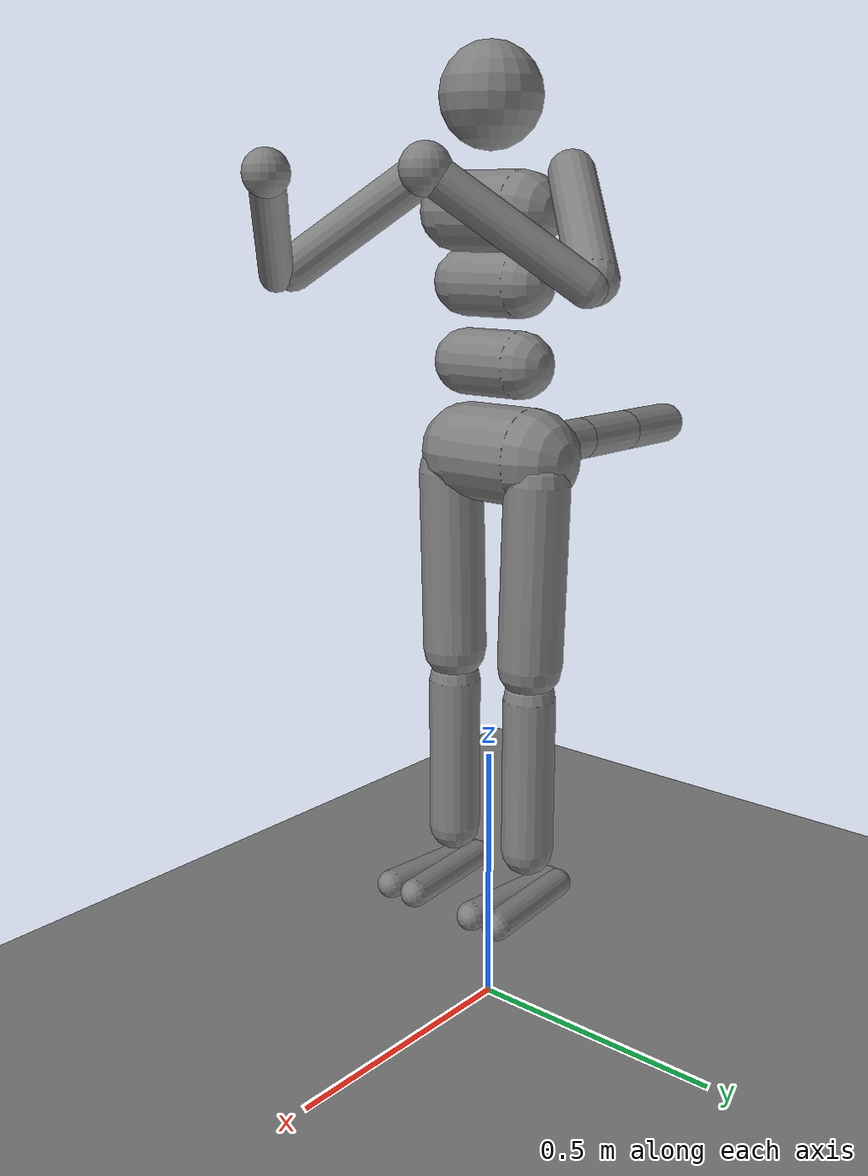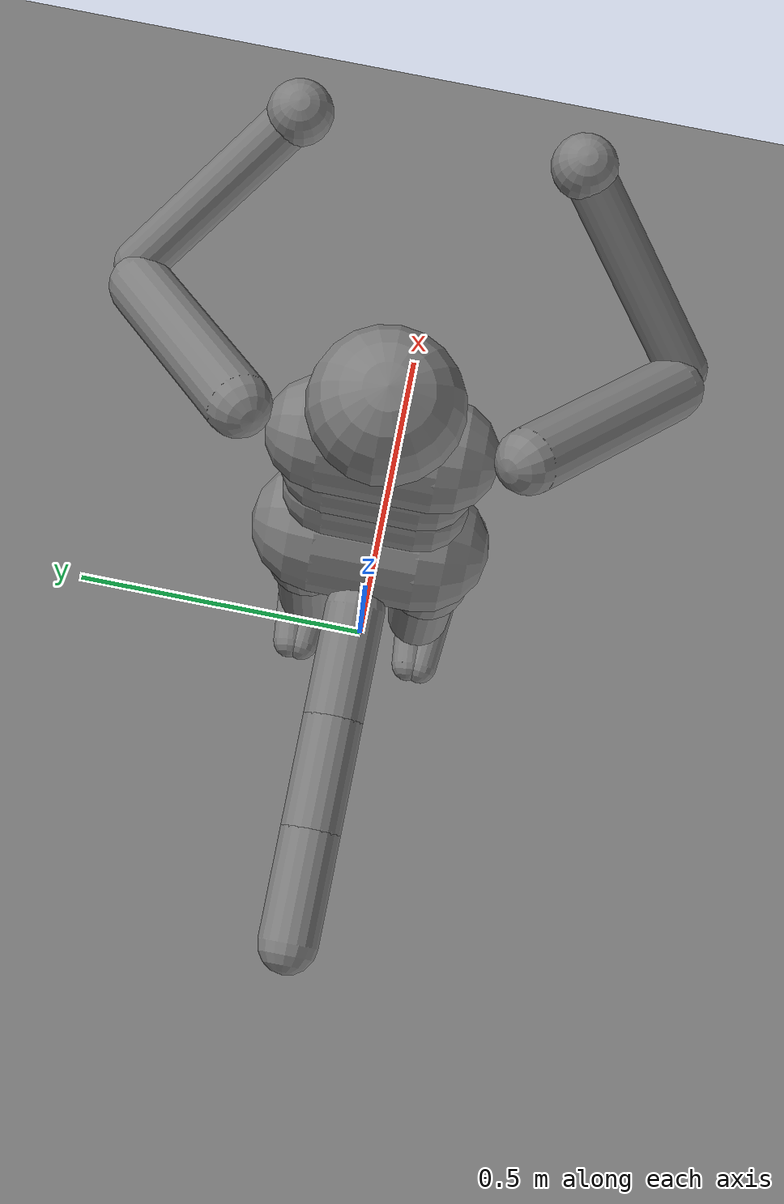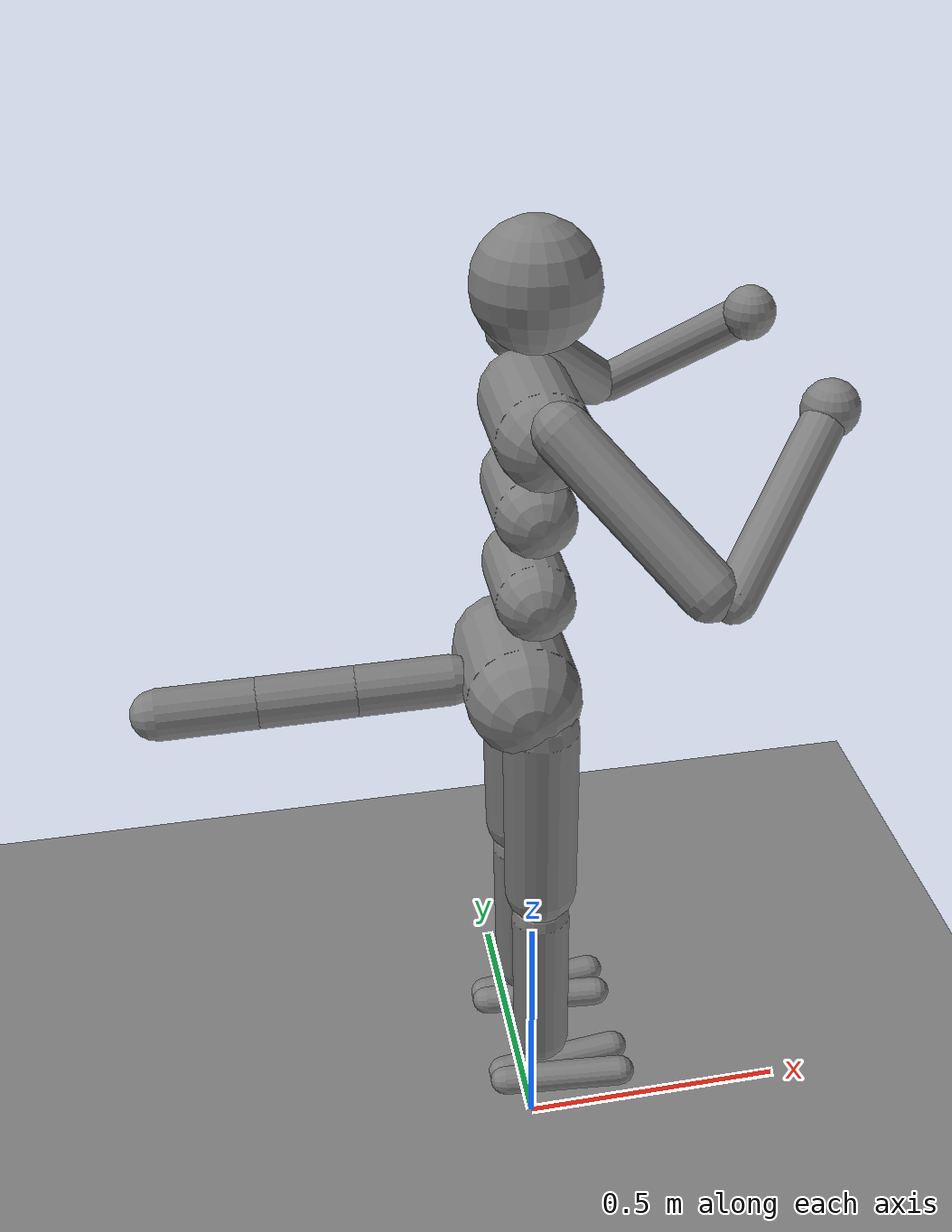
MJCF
<mujoco model="humanoid_horizontal">

  <statistic extent="2" center="0 0 1"/>

  <option timestep="0.00555"/>

  <default>
    <motor ctrlrange="-1 1" ctrllimited="true"/>
    <default class="body">
      <geom  type="capsule" condim="1" friction="1.0 0.05 0.05" solimp=".9 .99 .003" solref=".015 1"/>
      <joint type="hinge" damping="0.1" stiffness="5" armature=".007" limited="true" solimplimit="0 .99 .01"/>
      <default class="small_joint">
        <joint damping="1.0" stiffness="2" armature=".006"/>
      </default>
      <default class="big_joint">
        <joint damping="5" stiffness="10" armature=".01"/>
      </default>
      <default class="bigger_stiff_joint">
        <joint damping="5" stiffness="20" armature=".01"/>
      </default>
      <default class="big_stiff_joint">
        <joint damping="5" stiffness="20" armature=".02"/>
      </default>
      <site size=".04" group="3"/>
      <default class="force-torque">
        <site type="box" size=".01 .01 .02" rgba="1 0 0 1" />
      </default>
      <default class="touch">
        <site type="capsule" rgba="0 0 1 .3"/>
      </default>
    </default>
  </default>

  <worldbody>
    <geom name="floor" type="plane" conaffinity="1" size="100 100 .2"/>
    <body name="torso" pos="0 0 1.5" childclass="body">
      <light name="top" pos="0 0 2" mode="trackcom"/>
      <camera name="back" pos="-3 0 1" xyaxes="0 -1 0 1 0 2" mode="trackcom"/>
      <camera name="side" pos="0 -3 1" xyaxes="1 0 0 0 1 2" mode="trackcom"/>
      <freejoint name="root"/>
      <site name="root" class="force-torque"/>
      <geom name="torso" fromto="0 -.07 0 0 .07 0" size=".07"/>
      <geom name="upper_waist" fromto="-.01 -.06 -.12 -.01 .06 -.12" size=".06"/>
      <site name="torso" class="touch" type="box" pos="0 0 -.05" size=".075 .14 .13"/>
      <body name="head" pos="0 0 .19">
        <geom name="head" type="sphere" size=".09"/>
        <site name="head" class="touch" type="sphere" size=".091"/>
        <camera name="egocentric" pos=".09 0 0" xyaxes="0 -1 0 .1 0 1" fovy="80"/>
      </body>
      <body name="lower_waist" pos="-.01 0 -.260" quat="1.000 0 -.002 0">
        <geom name="lower_waist" fromto="0 -.06 0 0 .06 0" size=".06"/>
        <site name="lower_waist" class="touch" size=".061 .06" zaxis="0 1 0"/>
        <joint name="abdomen_z" pos="0 0 .065" axis="0 0 1" range="-45 45" class="big_stiff_joint"/>
        <joint name="abdomen_y" pos="0 0 .065" axis="0 1 0" range="-75 30" class="bigger_stiff_joint"/>
        <body name="pelvis" pos="0 0 -.165" quat="1.000 0 -.002 0">
          <joint name="abdomen_x" pos="0 0 .1" axis="1 0 0" range="-35 35" class="big_joint"/>
          <geom name="butt" fromto="-.02 -.07 0 -.02 .07 0" size=".09"/>
          <site name="butt" class="touch" size=".091 .07" pos="-.02 0 0" zaxis="0 1 0"/>
          <body name="tail" pos="-0.12 0 0">
            <joint name="tail_1_y" pos="0.0 0 0" axis="0 1 0" range="-60 60" class="small_joint"/>
            <joint name="tail_1_z" pos="0.0 0 0" axis="0 0 1" range="-60 60" class="small_joint"/>
            <geom name="tail_1" fromto="-.15 0 0 .0  .0 0" size=".04"/>
            <site name="tail_1" class="touch" pos=".035 -.03 0" size=".03 .11" zaxis="21 -2 0"/>
            <body name="tail_2" pos="-0.15 0 0">
              <joint name="tail_2_y" pos="0.0 0 0" axis="0 1 0" range="-60 60" class="small_joint"/>
              <joint name="tail_2_z" pos="0.0 0 0" axis="0 0 1" range="-60 60" class="small_joint"/>
              <geom name="tail_2" fromto="-.15 0 0 .0  .0 0" size=".04"/>
              <site name="tail_2" class="touch" pos=".035 -.03 0" size=".03 .11" zaxis="21 -2 0"/>
              <body name="tail_3" pos="-0.15 0 0">
                <joint name="tail_3_y" pos="0.0 0 0" axis="0 1 0" range="-60 60" class="small_joint"/>
                <joint name="tail_3_z" pos="0.0 0 0" axis="0 0 1" range="-60 60" class="small_joint"/>
                <geom name="tail_3" fromto="-.15 0 0 .0  .0 0" size=".04"/>
                <site name="tail_3" class="touch" pos=".035 -.03 0" size=".03 .11" zaxis="21 -2 0"/>
              </body>
            </body>
          </body>

          <body name="right_thigh" pos="0 -.1 -.04">
            <site name="right_hip" class="force-torque"/>
            <joint name="right_hip_x" axis="1 0 0" range="-45 15" class="big_joint"/>
            <joint name="right_hip_z" axis="0 0 1" range="-60 35" class="big_joint"/>
            <joint name="right_hip_y" axis="0 1 0" range="-120 45" class="bigger_stiff_joint"/>
            <geom name="right_thigh" fromto="0 0 0 0 .01 -.34" size=".06"/>
            <site name="right_thigh" class="touch" pos="0 .005 -.17" size=".061 .17" zaxis="0 -1 34"/>
            <body name="right_shin" pos="0 .01 -.403">
              <site name="right_knee" class="force-torque" pos="0 0 .02"/>
              <joint name="right_knee" pos="0 0 .02" axis="0 -1 0" range="-160 2"/>
              <geom name="right_shin" fromto="0 0 0 0 0 -.3"  size=".049"/>
              <site name="right_shin" class="touch" pos="0 0 -.15" size=".05 .15"/>
              <body name="right_foot" pos="0 0 -.39">
                <site name="right_ankle" class="force-torque"/>
                <joint name="right_ankle_y" pos="0 0 .08" axis="0 1 0" range="-50 50" class="small_joint"/>
                <joint name="right_ankle_x" pos="0 0 .08" axis="1 0 .5" range="-50 50" class="small_joint"/>
                <geom name="right_right_foot" fromto="-.07 -.02 0 .14 -.04 0" size=".027"/>
                <geom name="left_right_foot" fromto="-.07 0 0 .14  .02 0" size=".027"/>
                <site name="right_right_foot" class="touch" pos=".035 -.03 0" size=".03 .11" zaxis="21 -2 0"/>
                <site name="left_right_foot" class="touch" pos=".035 .01 0" size=".03 .11" zaxis="21 2 0"/>
              </body>
            </body>
          </body>
          <body name="left_thigh" pos="0 .1 -.04">
            <site name="left_hip" class="force-torque"/>
            <joint name="left_hip_x" axis="-1 0 0" range="-45 15" class="big_joint"/>
            <joint name="left_hip_z" axis="0 0 -1" range="-60 35" class="big_joint"/>
            <joint name="left_hip_y" axis="0 1 0" range="-120 45" class="bigger_stiff_joint"/>
            <geom name="left_thigh" fromto="0 0 0 0 -.01 -.34" size=".06"/>
            <site name="left_thigh" class="touch" pos="0 -.005 -.17" size=".061 .17" zaxis="0 1 34"/>
            <body name="left_shin" pos="0 -.01 -.403">
              <site name="left_knee" class="force-torque" pos="0 0 .02"/>
              <joint name="left_knee" pos="0 0 .02" axis="0 -1 0" range="-160 2"/>
              <geom name="left_shin" fromto="0 0 0 0 0 -.3"  size=".049"/>
              <site name="left_shin" class="touch"  pos="0 0 -.15" size=".05 .15"/>
              <body name="left_foot" pos="0 0 -.39">
                <site name="left_ankle" class="force-torque"/>
                <joint name="left_ankle_y" pos="0 0 .08" axis="0 1 0" range="-50 50" class="small_joint"/>
                <joint name="left_ankle_x" pos="0 0 .08" axis="1 0 .5" range="-50 50" class="small_joint"/>
                <geom name="left_left_foot" fromto="-.07 .02 0 .14 .04 0" size=".027"/>
                <geom name="right_left_foot" fromto="-.07 0 0 .14  -.02 0" size=".027"/>
                <site name="right_left_foot" class="touch" pos=".035 -.01 0" size=".03 .11" zaxis="21 -2 0"/>
                <site name="left_left_foot" class="touch" pos=".035 .03 0" size=".03 .11" zaxis="21 2 0"/>
              </body>
            </body>
          </body>
        </body>
      </body>
      <body name="right_upper_arm" pos="0 -.17 .06">
        <joint name="right_shoulder1" axis="2 1 1"  range="-90 70" class="big_joint"/>
        <joint name="right_shoulder2" axis="0 -1 1" range="-90 70" class="big_joint"/>
        <geom name="right_upper_arm" fromto="0 0 0 .16 -.16 -.16" size=".04 .16"/>
        <site name="right_upper_arm" class="touch" pos=".08 -.08 -.08" size=".041 .14" zaxis="1 -1 -1"/>
        <body name="right_lower_arm" pos=".18 -.18 -.18">
          <joint name="right_elbow" axis="0 -1 1" range="-90 50" class="small_joint"/>
          <geom name="right_lower_arm" fromto=".01 .01 .01 .17 .17 .17" size=".031"/>
          <site name="right_lower_arm" class="touch" pos=".09 .09 .09" size=".032 .14" zaxis="1 1 1"/>
          <body name="right_hand" pos=".18 .18 .18">
            <geom name="right_hand" type="sphere" size=".04"/>
            <site name="right_hand" class="touch" type="sphere" size=".041"/>
          </body>
        </body>
      </body>
      <body name="left_upper_arm" pos="0 .17 .06">
        <joint name="left_shoulder1" axis="-2 1 -1" range="-90 70" class="big_joint"/>
        <joint name="left_shoulder2" axis="0 -1 -1" range="-90 70" class="big_joint"/>
        <geom name="left_upper_arm" fromto="0 0 0 .16 .16 -.16" size=".04 .16"/>
        <site name="left_upper_arm" class="touch" pos=".08 .08 -.08" size=".041 .14" zaxis="1 1 -1"/>
        <body name="left_lower_arm" pos=".18 .18 -.18">
          <joint name="left_elbow" axis="0 -1 -1" range="-90 50" class="small_joint"/>
          <geom name="left_lower_arm" fromto=".01 -.01 .01 .17 -.17 .17" size=".031"/>
          <site name="left_lower_arm" class="touch" pos=".09 -.09 .09" size=".032 .14" zaxis="1 -1 1"/>
          <body name="left_hand" pos=".18 -.18 .18">
            <geom name="left_hand" type="sphere" size=".04"/>
            <site name="left_hand" class="touch" type="sphere" size=".041"/>
          </body>
        </body>
      </body>
    </body>
  </worldbody>

  <actuator>
    <motor name='abdomen_y'       gear='67.5' joint='abdomen_y'/>
    <motor name='abdomen_z'       gear='67.5' joint='abdomen_z'/>
    <motor name='abdomen_x'       gear='67.5' joint='abdomen_x'/>
    <motor name='right_hip_x'     gear='45.0' joint='right_hip_x'/>
    <motor name='right_hip_z'     gear='45.0' joint='right_hip_z'/>
    <motor name='right_hip_y'     gear='135.0' joint='right_hip_y'/>
    <motor name='tail_1_y'        gear='90.0' joint='tail_1_y'/>
    <motor name='tail_1_z'        gear='90.0' joint='tail_1_z'/>
    <motor name='tail_2_y'        gear='90.0' joint='tail_2_y'/>
    <motor name='tail_2_z'        gear='90.0' joint='tail_2_z'/>
    <motor name='tail_3_y'        gear='90.0' joint='tail_3_y'/>
    <motor name='tail_3_z'        gear='90.0' joint='tail_3_z'/>
    <motor name='right_knee'      gear='90.0' joint='right_knee'/>
    <motor name='right_ankle_x'   gear='22.5' joint='right_ankle_x'/>
    <motor name='right_ankle_y'   gear='22.5' joint='right_ankle_y'/>
    <motor name='left_hip_x'      gear='45.0' joint='left_hip_x'/>
    <motor name='left_hip_z'      gear='45.0' joint='left_hip_z'/>
    <motor name='left_hip_y'      gear='135.0' joint='left_hip_y'/>
    <motor name='left_knee'       gear='90.0' joint='left_knee'/>
    <motor name='left_ankle_x'    gear='22.5' joint='left_ankle_x'/>
    <motor name='left_ankle_y'    gear='22.5' joint='left_ankle_y'/>
    <motor name='right_shoulder1' gear='67.5' joint='right_shoulder1'/>
    <motor name='right_shoulder2' gear='67.5' joint='right_shoulder2'/>
    <motor name='right_elbow'     gear='45.0' joint='right_elbow'/>
    <motor name='left_shoulder1'  gear='67.5' joint='left_shoulder1'/>
    <motor name='left_shoulder2'  gear='67.5' joint='left_shoulder2'/>
    <motor name='left_elbow'      gear='45.0' joint='left_elbow'/>
  </actuator>

  <sensor>
    <subtreelinvel name="torso_subtreelinvel" body="torso"/>
    <accelerometer name="torso_accel"    site="root"/>
    <velocimeter name="torso_vel"        site="root"/>
    <gyro name="torso_gyro"              site="root"/>

    <force name="left_ankle_force"       site="left_ankle"/>
    <force name="right_ankle_force"      site="right_ankle"/>
    <force name="left_knee_force"        site="left_knee"/>
    <force name="right_knee_force"       site="right_knee"/>
    <force name="left_hip_force"         site="left_hip"/>
    <force name="right_hip_force"        site="right_hip"/>

    <torque name="left_ankle_torque"     site="left_ankle"/>
    <torque name="right_ankle_torque"    site="right_ankle"/>
    <torque name="left_knee_torque"      site="left_knee"/>
    <torque name="right_knee_torque"     site="right_knee"/>
    <torque name="left_hip_torque"       site="left_hip"/>
    <torque name="right_hip_torque"      site="right_hip"/>

    <touch name="torso_touch"            site="torso"/>
    <touch name="head_touch"             site="head"/>
    <touch name="lower_waist_touch"      site="lower_waist"/>
    <touch name="butt_touch"             site="butt"/>
    <touch name="right_thigh_touch"      site="right_thigh"/>
    <touch name="right_shin_touch"       site="right_shin"/>
    <touch name="right_right_foot_touch" site="right_right_foot"/>
    <touch name="left_right_foot_touch"  site="left_right_foot"/>
    <touch name="left_thigh_touch"       site="left_thigh"/>
    <touch name="left_shin_touch"        site="left_shin"/>
    <touch name="right_left_foot_touch"  site="right_left_foot"/>
    <touch name="left_left_foot_touch"   site="left_left_foot"/>
    <touch name="right_upper_arm_touch"  site="right_upper_arm"/>
    <touch name="right_lower_arm_touch"  site="right_lower_arm"/>
    <touch name="right_hand_touch"       site="right_hand"/>
    <touch name="left_upper_arm_touch"   site="left_upper_arm"/>
    <touch name="left_lower_arm_touch"   site="left_lower_arm"/>
    <touch name="left_hand_touch"        site="left_hand"/>
  </sensor>

</mujoco>
